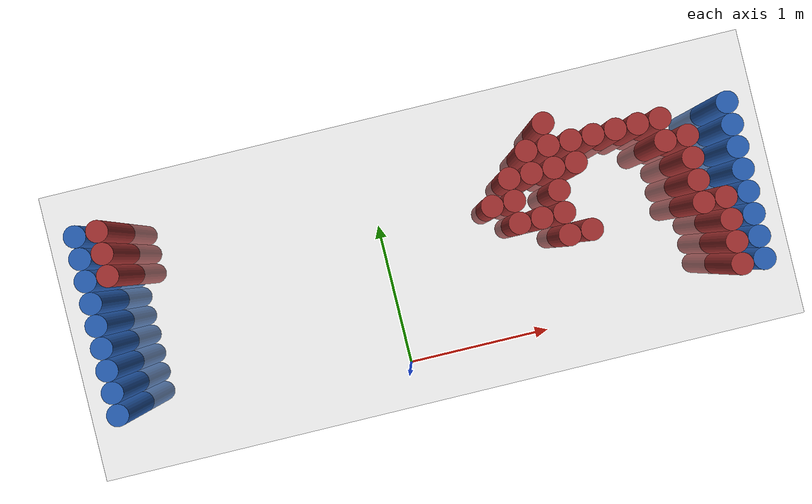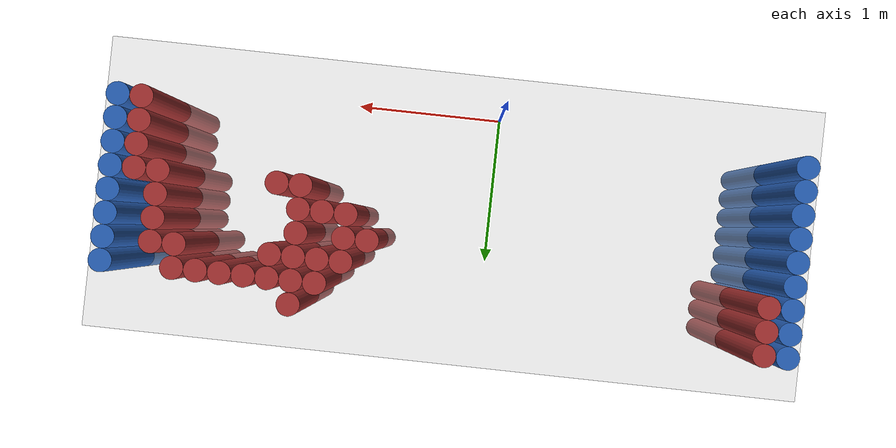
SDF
<sdf version="1.6">
 <world name="default">
  <model name="ground_plane">
   <static>1</static>
   <link name="link">
    <collision name="collision">
     <geometry><plane><normal>0 0 1</normal><size>100 100</size></plane></geometry>
     <surface><friction><ode><mu>100</mu><mu2>50</mu2></ode></friction></surface>
    </collision>
    <visual name="visual">
     <cast_shadows>0</cast_shadows>
     <geometry><plane><normal>0 0 1</normal><size>100 100</size></plane></geometry>
     <material>
      <script><uri>file://media/materials/scripts/gazebo.material</uri><name>Gazebo/Grey</name></script>
     </material>
    </visual>
   </link>
  </model>
  <model name="unit_cylinder_96">
   <static>1</static>
   <pose>-1.925000 0.175000 0.000000 0.000000 0.000000 0.000000</pose>
   <link name="link">
    <inertial>
     <mass>1</mass>
     <inertia><ixx>0.145833</ixx><ixy>0</ixy><ixz>0</ixz><iyy>0.145833</iyy><iyz>0</iyz><izz>0.125</izz></inertia>
    </inertial>
    <collision name="collision">
     <geometry><cylinder><radius>0.075000</radius><length>1.5</length></cylinder></geometry>
    </collision>
    <visual name="visual">
     <geometry><cylinder><radius>0.075000</radius><length>1.5</length></cylinder></geometry>
     <material>
      <ambient>0.152000 0.379000 0.720000 1</ambient>
      <diffuse>0.152000 0.379000 0.720000 1</diffuse>
     </material>
     <material>
      <script><name>Gazebo/Grey</name><uri>file://media/materials/scripts/gazebo.material</uri></script>
     </material>
    </visual>
   </link>
  </model>
  <model name="unit_cylinder_97">
   <static>1</static>
   <pose>-1.925000 0.325000 0.000000 0.000000 0.000000 0.000000</pose>
   <link name="link">
    <inertial>
     <mass>1</mass>
     <inertia><ixx>0.145833</ixx><ixy>0</ixy><ixz>0</ixz><iyy>0.145833</iyy><iyz>0</iyz><izz>0.125</izz></inertia>
    </inertial>
    <collision name="collision">
     <geometry><cylinder><radius>0.075000</radius><length>1.5</length></cylinder></geometry>
    </collision>
    <visual name="visual">
     <geometry><cylinder><radius>0.075000</radius><length>1.5</length></cylinder></geometry>
     <material>
      <ambient>0.152000 0.379000 0.720000 1</ambient>
      <diffuse>0.152000 0.379000 0.720000 1</diffuse>
     </material>
     <material>
      <script><name>Gazebo/Grey</name><uri>file://media/materials/scripts/gazebo.material</uri></script>
     </material>
    </visual>
   </link>
  </model>
  <model name="unit_cylinder_98">
   <static>1</static>
   <pose>-1.925000 0.475000 0.000000 0.000000 0.000000 0.000000</pose>
   <link name="link">
    <inertial>
     <mass>1</mass>
     <inertia><ixx>0.145833</ixx><ixy>0</ixy><ixz>0</ixz><iyy>0.145833</iyy><iyz>0</iyz><izz>0.125</izz></inertia>
    </inertial>
    <collision name="collision">
     <geometry><cylinder><radius>0.075000</radius><length>1.5</length></cylinder></geometry>
    </collision>
    <visual name="visual">
     <geometry><cylinder><radius>0.075000</radius><length>1.5</length></cylinder></geometry>
     <material>
      <ambient>0.152000 0.379000 0.720000 1</ambient>
      <diffuse>0.152000 0.379000 0.720000 1</diffuse>
     </material>
     <material>
      <script><name>Gazebo/Grey</name><uri>file://media/materials/scripts/gazebo.material</uri></script>
     </material>
    </visual>
   </link>
  </model>
  <model name="unit_cylinder_99">
   <static>1</static>
   <pose>-1.925000 0.625000 0.000000 0.000000 0.000000 0.000000</pose>
   <link name="link">
    <inertial>
     <mass>1</mass>
     <inertia><ixx>0.145833</ixx><ixy>0</ixy><ixz>0</ixz><iyy>0.145833</iyy><iyz>0</iyz><izz>0.125</izz></inertia>
    </inertial>
    <collision name="collision">
     <geometry><cylinder><radius>0.075000</radius><length>1.5</length></cylinder></geometry>
    </collision>
    <visual name="visual">
     <geometry><cylinder><radius>0.075000</radius><length>1.5</length></cylinder></geometry>
     <material>
      <ambient>0.152000 0.379000 0.720000 1</ambient>
      <diffuse>0.152000 0.379000 0.720000 1</diffuse>
     </material>
     <material>
      <script><name>Gazebo/Grey</name><uri>file://media/materials/scripts/gazebo.material</uri></script>
     </material>
    </visual>
   </link>
  </model>
  <model name="unit_cylinder_100">
   <static>1</static>
   <pose>-1.925000 0.775000 0.000000 0.000000 0.000000 0.000000</pose>
   <link name="link">
    <inertial>
     <mass>1</mass>
     <inertia><ixx>0.145833</ixx><ixy>0</ixy><ixz>0</ixz><iyy>0.145833</iyy><iyz>0</iyz><izz>0.125</izz></inertia>
    </inertial>
    <collision name="collision">
     <geometry><cylinder><radius>0.075000</radius><length>1.5</length></cylinder></geometry>
    </collision>
    <visual name="visual">
     <geometry><cylinder><radius>0.075000</radius><length>1.5</length></cylinder></geometry>
     <material>
      <ambient>0.152000 0.379000 0.720000 1</ambient>
      <diffuse>0.152000 0.379000 0.720000 1</diffuse>
     </material>
     <material>
      <script><name>Gazebo/Grey</name><uri>file://media/materials/scripts/gazebo.material</uri></script>
     </material>
    </visual>
   </link>
  </model>
  <model name="unit_cylinder_101">
   <static>1</static>
   <pose>-1.925000 0.925000 0.000000 0.000000 0.000000 0.000000</pose>
   <link name="link">
    <inertial>
     <mass>1</mass>
     <inertia><ixx>0.145833</ixx><ixy>0</ixy><ixz>0</ixz><iyy>0.145833</iyy><iyz>0</iyz><izz>0.125</izz></inertia>
    </inertial>
    <collision name="collision">
     <geometry><cylinder><radius>0.075000</radius><length>1.5</length></cylinder></geometry>
    </collision>
    <visual name="visual">
     <geometry><cylinder><radius>0.075000</radius><length>1.5</length></cylinder></geometry>
     <material>
      <ambient>0.152000 0.379000 0.720000 1</ambient>
      <diffuse>0.152000 0.379000 0.720000 1</diffuse>
     </material>
     <material>
      <script><name>Gazebo/Grey</name><uri>file://media/materials/scripts/gazebo.material</uri></script>
     </material>
    </visual>
   </link>
  </model>
  <model name="unit_cylinder_102">
   <static>1</static>
   <pose>-1.925000 1.075000 0.000000 0.000000 0.000000 0.000000</pose>
   <link name="link">
    <inertial>
     <mass>1</mass>
     <inertia><ixx>0.145833</ixx><ixy>0</ixy><ixz>0</ixz><iyy>0.145833</iyy><iyz>0</iyz><izz>0.125</izz></inertia>
    </inertial>
    <collision name="collision">
     <geometry><cylinder><radius>0.075000</radius><length>1.5</length></cylinder></geometry>
    </collision>
    <visual name="visual">
     <geometry><cylinder><radius>0.075000</radius><length>1.5</length></cylinder></geometry>
     <material>
      <ambient>0.152000 0.379000 0.720000 1</ambient>
      <diffuse>0.152000 0.379000 0.720000 1</diffuse>
     </material>
     <material>
      <script><name>Gazebo/Grey</name><uri>file://media/materials/scripts/gazebo.material</uri></script>
     </material>
    </visual>
   </link>
  </model>
  <model name="unit_cylinder_103">
   <static>1</static>
   <pose>-1.925000 1.225000 0.000000 0.000000 0.000000 0.000000</pose>
   <link name="link">
    <inertial>
     <mass>1</mass>
     <inertia><ixx>0.145833</ixx><ixy>0</ixy><ixz>0</ixz><iyy>0.145833</iyy><iyz>0</iyz><izz>0.125</izz></inertia>
    </inertial>
    <collision name="collision">
     <geometry><cylinder><radius>0.075000</radius><length>1.5</length></cylinder></geometry>
    </collision>
    <visual name="visual">
     <geometry><cylinder><radius>0.075000</radius><length>1.5</length></cylinder></geometry>
     <material>
      <ambient>0.152000 0.379000 0.720000 1</ambient>
      <diffuse>0.152000 0.379000 0.720000 1</diffuse>
     </material>
     <material>
      <script><name>Gazebo/Grey</name><uri>file://media/materials/scripts/gazebo.material</uri></script>
     </material>
    </visual>
   </link>
  </model>
  <model name="unit_cylinder_104">
   <static>1</static>
   <pose>-1.925000 1.375000 0.000000 0.000000 0.000000 0.000000</pose>
   <link name="link">
    <inertial>
     <mass>1</mass>
     <inertia><ixx>0.145833</ixx><ixy>0</ixy><ixz>0</ixz><iyy>0.145833</iyy><iyz>0</iyz><izz>0.125</izz></inertia>
    </inertial>
    <collision name="collision">
     <geometry><cylinder><radius>0.075000</radius><length>1.5</length></cylinder></geometry>
    </collision>
    <visual name="visual">
     <geometry><cylinder><radius>0.075000</radius><length>1.5</length></cylinder></geometry>
     <material>
      <ambient>0.152000 0.379000 0.720000 1</ambient>
      <diffuse>0.152000 0.379000 0.720000 1</diffuse>
     </material>
     <material>
      <script><name>Gazebo/Grey</name><uri>file://media/materials/scripts/gazebo.material</uri></script>
     </material>
    </visual>
   </link>
  </model>
  <model name="unit_cylinder_126">
   <static>1</static>
   <pose>-1.775000 1.075000 0.000000 0.000000 0.000000 0.000000</pose>
   <link name="link">
    <inertial>
     <mass>1</mass>
     <inertia><ixx>0.145833</ixx><ixy>0</ixy><ixz>0</ixz><iyy>0.145833</iyy><iyz>0</iyz><izz>0.125</izz></inertia>
    </inertial>
    <collision name="collision">
     <geometry><cylinder><radius>0.075000</radius><length>1.5</length></cylinder></geometry>
    </collision>
    <visual name="visual">
     <geometry><cylinder><radius>0.075000</radius><length>1.5</length></cylinder></geometry>
     <material>
      <ambient>0.648000 0.192000 0.192000 1</ambient>
      <diffuse>0.648000 0.192000 0.192000 1</diffuse>
     </material>
     <material>
      <script><name>Gazebo/Grey</name><uri>file://media/materials/scripts/gazebo.material</uri></script>
     </material>
    </visual>
   </link>
  </model>
  <model name="unit_cylinder_127">
   <static>1</static>
   <pose>-1.775000 1.225000 0.000000 0.000000 0.000000 0.000000</pose>
   <link name="link">
    <inertial>
     <mass>1</mass>
     <inertia><ixx>0.145833</ixx><ixy>0</ixy><ixz>0</ixz><iyy>0.145833</iyy><iyz>0</iyz><izz>0.125</izz></inertia>
    </inertial>
    <collision name="collision">
     <geometry><cylinder><radius>0.075000</radius><length>1.5</length></cylinder></geometry>
    </collision>
    <visual name="visual">
     <geometry><cylinder><radius>0.075000</radius><length>1.5</length></cylinder></geometry>
     <material>
      <ambient>0.648000 0.192000 0.192000 1</ambient>
      <diffuse>0.648000 0.192000 0.192000 1</diffuse>
     </material>
     <material>
      <script><name>Gazebo/Grey</name><uri>file://media/materials/scripts/gazebo.material</uri></script>
     </material>
    </visual>
   </link>
  </model>
  <model name="unit_cylinder_128">
   <static>1</static>
   <pose>-1.775000 1.375000 0.000000 0.000000 0.000000 0.000000</pose>
   <link name="link">
    <inertial>
     <mass>1</mass>
     <inertia><ixx>0.145833</ixx><ixy>0</ixy><ixz>0</ixz><iyy>0.145833</iyy><iyz>0</iyz><izz>0.125</izz></inertia>
    </inertial>
    <collision name="collision">
     <geometry><cylinder><radius>0.075000</radius><length>1.5</length></cylinder></geometry>
    </collision>
    <visual name="visual">
     <geometry><cylinder><radius>0.075000</radius><length>1.5</length></cylinder></geometry>
     <material>
      <ambient>0.648000 0.192000 0.192000 1</ambient>
      <diffuse>0.648000 0.192000 0.192000 1</diffuse>
     </material>
     <material>
      <script><name>Gazebo/Grey</name><uri>file://media/materials/scripts/gazebo.material</uri></script>
     </material>
    </visual>
   </link>
  </model>
  <model name="unit_cylinder_174">
   <static>1</static>
   <pose>0.775000 0.925000 0.000000 0.000000 0.000000 0.000000</pose>
   <link name="link">
    <inertial>
     <mass>1</mass>
     <inertia><ixx>0.145833</ixx><ixy>0</ixy><ixz>0</ixz><iyy>0.145833</iyy><iyz>0</iyz><izz>0.125</izz></inertia>
    </inertial>
    <collision name="collision">
     <geometry><cylinder><radius>0.075000</radius><length>1.5</length></cylinder></geometry>
    </collision>
    <visual name="visual">
     <geometry><cylinder><radius>0.075000</radius><length>1.5</length></cylinder></geometry>
     <material>
      <ambient>0.648000 0.192000 0.192000 1</ambient>
      <diffuse>0.648000 0.192000 0.192000 1</diffuse>
     </material>
     <material>
      <script><name>Gazebo/Grey</name><uri>file://media/materials/scripts/gazebo.material</uri></script>
     </material>
    </visual>
   </link>
  </model>
  <model name="unit_cylinder_179">
   <static>1</static>
   <pose>0.925000 0.775000 0.000000 0.000000 0.000000 0.000000</pose>
   <link name="link">
    <inertial>
     <mass>1</mass>
     <inertia><ixx>0.145833</ixx><ixy>0</ixy><ixz>0</ixz><iyy>0.145833</iyy><iyz>0</iyz><izz>0.125</izz></inertia>
    </inertial>
    <collision name="collision">
     <geometry><cylinder><radius>0.075000</radius><length>1.5</length></cylinder></geometry>
    </collision>
    <visual name="visual">
     <geometry><cylinder><radius>0.075000</radius><length>1.5</length></cylinder></geometry>
     <material>
      <ambient>0.648000 0.192000 0.192000 1</ambient>
      <diffuse>0.648000 0.192000 0.192000 1</diffuse>
     </material>
     <material>
      <script><name>Gazebo/Grey</name><uri>file://media/materials/scripts/gazebo.material</uri></script>
     </material>
    </visual>
   </link>
  </model>
  <model name="unit_cylinder_180">
   <static>1</static>
   <pose>0.925000 0.925000 0.000000 0.000000 0.000000 0.000000</pose>
   <link name="link">
    <inertial>
     <mass>1</mass>
     <inertia><ixx>0.145833</ixx><ixy>0</ixy><ixz>0</ixz><iyy>0.145833</iyy><iyz>0</iyz><izz>0.125</izz></inertia>
    </inertial>
    <collision name="collision">
     <geometry><cylinder><radius>0.075000</radius><length>1.5</length></cylinder></geometry>
    </collision>
    <visual name="visual">
     <geometry><cylinder><radius>0.075000</radius><length>1.5</length></cylinder></geometry>
     <material>
      <ambient>0.648000 0.192000 0.192000 1</ambient>
      <diffuse>0.648000 0.192000 0.192000 1</diffuse>
     </material>
     <material>
      <script><name>Gazebo/Grey</name><uri>file://media/materials/scripts/gazebo.material</uri></script>
     </material>
    </visual>
   </link>
  </model>
  <model name="unit_cylinder_181">
   <static>1</static>
   <pose>0.925000 1.075000 0.000000 0.000000 0.000000 0.000000</pose>
   <link name="link">
    <inertial>
     <mass>1</mass>
     <inertia><ixx>0.145833</ixx><ixy>0</ixy><ixz>0</ixz><iyy>0.145833</iyy><iyz>0</iyz><izz>0.125</izz></inertia>
    </inertial>
    <collision name="collision">
     <geometry><cylinder><radius>0.075000</radius><length>1.5</length></cylinder></geometry>
    </collision>
    <visual name="visual">
     <geometry><cylinder><radius>0.075000</radius><length>1.5</length></cylinder></geometry>
     <material>
      <ambient>0.648000 0.192000 0.192000 1</ambient>
      <diffuse>0.648000 0.192000 0.192000 1</diffuse>
     </material>
     <material>
      <script><name>Gazebo/Grey</name><uri>file://media/materials/scripts/gazebo.material</uri></script>
     </material>
    </visual>
   </link>
  </model>
  <model name="unit_cylinder_186">
   <static>1</static>
   <pose>1.075000 0.775000 0.000000 0.000000 0.000000 0.000000</pose>
   <link name="link">
    <inertial>
     <mass>1</mass>
     <inertia><ixx>0.145833</ixx><ixy>0</ixy><ixz>0</ixz><iyy>0.145833</iyy><iyz>0</iyz><izz>0.125</izz></inertia>
    </inertial>
    <collision name="collision">
     <geometry><cylinder><radius>0.075000</radius><length>1.5</length></cylinder></geometry>
    </collision>
    <visual name="visual">
     <geometry><cylinder><radius>0.075000</radius><length>1.5</length></cylinder></geometry>
     <material>
      <ambient>0.648000 0.192000 0.192000 1</ambient>
      <diffuse>0.648000 0.192000 0.192000 1</diffuse>
     </material>
     <material>
      <script><name>Gazebo/Grey</name><uri>file://media/materials/scripts/gazebo.material</uri></script>
     </material>
    </visual>
   </link>
  </model>
  <model name="unit_cylinder_187">
   <static>1</static>
   <pose>1.075000 1.075000 0.000000 0.000000 0.000000 0.000000</pose>
   <link name="link">
    <inertial>
     <mass>1</mass>
     <inertia><ixx>0.145833</ixx><ixy>0</ixy><ixz>0</ixz><iyy>0.145833</iyy><iyz>0</iyz><izz>0.125</izz></inertia>
    </inertial>
    <collision name="collision">
     <geometry><cylinder><radius>0.075000</radius><length>1.5</length></cylinder></geometry>
    </collision>
    <visual name="visual">
     <geometry><cylinder><radius>0.075000</radius><length>1.5</length></cylinder></geometry>
     <material>
      <ambient>0.648000 0.192000 0.192000 1</ambient>
      <diffuse>0.648000 0.192000 0.192000 1</diffuse>
     </material>
     <material>
      <script><name>Gazebo/Grey</name><uri>file://media/materials/scripts/gazebo.material</uri></script>
     </material>
    </visual>
   </link>
  </model>
  <model name="unit_cylinder_188">
   <static>1</static>
   <pose>1.075000 1.225000 0.000000 0.000000 0.000000 0.000000</pose>
   <link name="link">
    <inertial>
     <mass>1</mass>
     <inertia><ixx>0.145833</ixx><ixy>0</ixy><ixz>0</ixz><iyy>0.145833</iyy><iyz>0</iyz><izz>0.125</izz></inertia>
    </inertial>
    <collision name="collision">
     <geometry><cylinder><radius>0.075000</radius><length>1.5</length></cylinder></geometry>
    </collision>
    <visual name="visual">
     <geometry><cylinder><radius>0.075000</radius><length>1.5</length></cylinder></geometry>
     <material>
      <ambient>0.648000 0.192000 0.192000 1</ambient>
      <diffuse>0.648000 0.192000 0.192000 1</diffuse>
     </material>
     <material>
      <script><name>Gazebo/Grey</name><uri>file://media/materials/scripts/gazebo.material</uri></script>
     </material>
    </visual>
   </link>
  </model>
  <model name="unit_cylinder_190">
   <static>1</static>
   <pose>1.225000 0.625000 0.000000 0.000000 0.000000 0.000000</pose>
   <link name="link">
    <inertial>
     <mass>1</mass>
     <inertia><ixx>0.145833</ixx><ixy>0</ixy><ixz>0</ixz><iyy>0.145833</iyy><iyz>0</iyz><izz>0.125</izz></inertia>
    </inertial>
    <collision name="collision">
     <geometry><cylinder><radius>0.075000</radius><length>1.5</length></cylinder></geometry>
    </collision>
    <visual name="visual">
     <geometry><cylinder><radius>0.075000</radius><length>1.5</length></cylinder></geometry>
     <material>
      <ambient>0.648000 0.192000 0.192000 1</ambient>
      <diffuse>0.648000 0.192000 0.192000 1</diffuse>
     </material>
     <material>
      <script><name>Gazebo/Grey</name><uri>file://media/materials/scripts/gazebo.material</uri></script>
     </material>
    </visual>
   </link>
  </model>
  <model name="unit_cylinder_191">
   <static>1</static>
   <pose>1.225000 0.775000 0.000000 0.000000 0.000000 0.000000</pose>
   <link name="link">
    <inertial>
     <mass>1</mass>
     <inertia><ixx>0.145833</ixx><ixy>0</ixy><ixz>0</ixz><iyy>0.145833</iyy><iyz>0</iyz><izz>0.125</izz></inertia>
    </inertial>
    <collision name="collision">
     <geometry><cylinder><radius>0.075000</radius><length>1.5</length></cylinder></geometry>
    </collision>
    <visual name="visual">
     <geometry><cylinder><radius>0.075000</radius><length>1.5</length></cylinder></geometry>
     <material>
      <ambient>0.648000 0.192000 0.192000 1</ambient>
      <diffuse>0.648000 0.192000 0.192000 1</diffuse>
     </material>
     <material>
      <script><name>Gazebo/Grey</name><uri>file://media/materials/scripts/gazebo.material</uri></script>
     </material>
    </visual>
   </link>
  </model>
  <model name="unit_cylinder_192">
   <static>1</static>
   <pose>1.225000 0.925000 0.000000 0.000000 0.000000 0.000000</pose>
   <link name="link">
    <inertial>
     <mass>1</mass>
     <inertia><ixx>0.145833</ixx><ixy>0</ixy><ixz>0</ixz><iyy>0.145833</iyy><iyz>0</iyz><izz>0.125</izz></inertia>
    </inertial>
    <collision name="collision">
     <geometry><cylinder><radius>0.075000</radius><length>1.5</length></cylinder></geometry>
    </collision>
    <visual name="visual">
     <geometry><cylinder><radius>0.075000</radius><length>1.5</length></cylinder></geometry>
     <material>
      <ambient>0.648000 0.192000 0.192000 1</ambient>
      <diffuse>0.648000 0.192000 0.192000 1</diffuse>
     </material>
     <material>
      <script><name>Gazebo/Grey</name><uri>file://media/materials/scripts/gazebo.material</uri></script>
     </material>
    </visual>
   </link>
  </model>
  <model name="unit_cylinder_193">
   <static>1</static>
   <pose>1.225000 1.075000 0.000000 0.000000 0.000000 0.000000</pose>
   <link name="link">
    <inertial>
     <mass>1</mass>
     <inertia><ixx>0.145833</ixx><ixy>0</ixy><ixz>0</ixz><iyy>0.145833</iyy><iyz>0</iyz><izz>0.125</izz></inertia>
    </inertial>
    <collision name="collision">
     <geometry><cylinder><radius>0.075000</radius><length>1.5</length></cylinder></geometry>
    </collision>
    <visual name="visual">
     <geometry><cylinder><radius>0.075000</radius><length>1.5</length></cylinder></geometry>
     <material>
      <ambient>0.648000 0.192000 0.192000 1</ambient>
      <diffuse>0.648000 0.192000 0.192000 1</diffuse>
     </material>
     <material>
      <script><name>Gazebo/Grey</name><uri>file://media/materials/scripts/gazebo.material</uri></script>
     </material>
    </visual>
   </link>
  </model>
  <model name="unit_cylinder_194">
   <static>1</static>
   <pose>1.225000 1.225000 0.000000 0.000000 0.000000 0.000000</pose>
   <link name="link">
    <inertial>
     <mass>1</mass>
     <inertia><ixx>0.145833</ixx><ixy>0</ixy><ixz>0</ixz><iyy>0.145833</iyy><iyz>0</iyz><izz>0.125</izz></inertia>
    </inertial>
    <collision name="collision">
     <geometry><cylinder><radius>0.075000</radius><length>1.5</length></cylinder></geometry>
    </collision>
    <visual name="visual">
     <geometry><cylinder><radius>0.075000</radius><length>1.5</length></cylinder></geometry>
     <material>
      <ambient>0.648000 0.192000 0.192000 1</ambient>
      <diffuse>0.648000 0.192000 0.192000 1</diffuse>
     </material>
     <material>
      <script><name>Gazebo/Grey</name><uri>file://media/materials/scripts/gazebo.material</uri></script>
     </material>
    </visual>
   </link>
  </model>
  <model name="unit_cylinder_195">
   <static>1</static>
   <pose>1.225000 1.375000 0.000000 0.000000 0.000000 0.000000</pose>
   <link name="link">
    <inertial>
     <mass>1</mass>
     <inertia><ixx>0.145833</ixx><ixy>0</ixy><ixz>0</ixz><iyy>0.145833</iyy><iyz>0</iyz><izz>0.125</izz></inertia>
    </inertial>
    <collision name="collision">
     <geometry><cylinder><radius>0.075000</radius><length>1.5</length></cylinder></geometry>
    </collision>
    <visual name="visual">
     <geometry><cylinder><radius>0.075000</radius><length>1.5</length></cylinder></geometry>
     <material>
      <ambient>0.648000 0.192000 0.192000 1</ambient>
      <diffuse>0.648000 0.192000 0.192000 1</diffuse>
     </material>
     <material>
      <script><name>Gazebo/Grey</name><uri>file://media/materials/scripts/gazebo.material</uri></script>
     </material>
    </visual>
   </link>
  </model>
  <model name="unit_cylinder_197">
   <static>1</static>
   <pose>1.375000 0.625000 0.000000 0.000000 0.000000 0.000000</pose>
   <link name="link">
    <inertial>
     <mass>1</mass>
     <inertia><ixx>0.145833</ixx><ixy>0</ixy><ixz>0</ixz><iyy>0.145833</iyy><iyz>0</iyz><izz>0.125</izz></inertia>
    </inertial>
    <collision name="collision">
     <geometry><cylinder><radius>0.075000</radius><length>1.5</length></cylinder></geometry>
    </collision>
    <visual name="visual">
     <geometry><cylinder><radius>0.075000</radius><length>1.5</length></cylinder></geometry>
     <material>
      <ambient>0.648000 0.192000 0.192000 1</ambient>
      <diffuse>0.648000 0.192000 0.192000 1</diffuse>
     </material>
     <material>
      <script><name>Gazebo/Grey</name><uri>file://media/materials/scripts/gazebo.material</uri></script>
     </material>
    </visual>
   </link>
  </model>
  <model name="unit_cylinder_198">
   <static>1</static>
   <pose>1.375000 1.075000 0.000000 0.000000 0.000000 0.000000</pose>
   <link name="link">
    <inertial>
     <mass>1</mass>
     <inertia><ixx>0.145833</ixx><ixy>0</ixy><ixz>0</ixz><iyy>0.145833</iyy><iyz>0</iyz><izz>0.125</izz></inertia>
    </inertial>
    <collision name="collision">
     <geometry><cylinder><radius>0.075000</radius><length>1.5</length></cylinder></geometry>
    </collision>
    <visual name="visual">
     <geometry><cylinder><radius>0.075000</radius><length>1.5</length></cylinder></geometry>
     <material>
      <ambient>0.648000 0.192000 0.192000 1</ambient>
      <diffuse>0.648000 0.192000 0.192000 1</diffuse>
     </material>
     <material>
      <script><name>Gazebo/Grey</name><uri>file://media/materials/scripts/gazebo.material</uri></script>
     </material>
    </visual>
   </link>
  </model>
  <model name="unit_cylinder_199">
   <static>1</static>
   <pose>1.375000 1.225000 0.000000 0.000000 0.000000 0.000000</pose>
   <link name="link">
    <inertial>
     <mass>1</mass>
     <inertia><ixx>0.145833</ixx><ixy>0</ixy><ixz>0</ixz><iyy>0.145833</iyy><iyz>0</iyz><izz>0.125</izz></inertia>
    </inertial>
    <collision name="collision">
     <geometry><cylinder><radius>0.075000</radius><length>1.5</length></cylinder></geometry>
    </collision>
    <visual name="visual">
     <geometry><cylinder><radius>0.075000</radius><length>1.5</length></cylinder></geometry>
     <material>
      <ambient>0.648000 0.192000 0.192000 1</ambient>
      <diffuse>0.648000 0.192000 0.192000 1</diffuse>
     </material>
     <material>
      <script><name>Gazebo/Grey</name><uri>file://media/materials/scripts/gazebo.material</uri></script>
     </material>
    </visual>
   </link>
  </model>
  <model name="unit_cylinder_204">
   <static>1</static>
   <pose>1.525000 1.225000 0.000000 0.000000 0.000000 0.000000</pose>
   <link name="link">
    <inertial>
     <mass>1</mass>
     <inertia><ixx>0.145833</ixx><ixy>0</ixy><ixz>0</ixz><iyy>0.145833</iyy><iyz>0</iyz><izz>0.125</izz></inertia>
    </inertial>
    <collision name="collision">
     <geometry><cylinder><radius>0.075000</radius><length>1.5</length></cylinder></geometry>
    </collision>
    <visual name="visual">
     <geometry><cylinder><radius>0.075000</radius><length>1.5</length></cylinder></geometry>
     <material>
      <ambient>0.648000 0.192000 0.192000 1</ambient>
      <diffuse>0.648000 0.192000 0.192000 1</diffuse>
     </material>
     <material>
      <script><name>Gazebo/Grey</name><uri>file://media/materials/scripts/gazebo.material</uri></script>
     </material>
    </visual>
   </link>
  </model>
  <model name="unit_cylinder_209">
   <static>1</static>
   <pose>1.675000 1.225000 0.000000 0.000000 0.000000 0.000000</pose>
   <link name="link">
    <inertial>
     <mass>1</mass>
     <inertia><ixx>0.145833</ixx><ixy>0</ixy><ixz>0</ixz><iyy>0.145833</iyy><iyz>0</iyz><izz>0.125</izz></inertia>
    </inertial>
    <collision name="collision">
     <geometry><cylinder><radius>0.075000</radius><length>1.5</length></cylinder></geometry>
    </collision>
    <visual name="visual">
     <geometry><cylinder><radius>0.075000</radius><length>1.5</length></cylinder></geometry>
     <material>
      <ambient>0.648000 0.192000 0.192000 1</ambient>
      <diffuse>0.648000 0.192000 0.192000 1</diffuse>
     </material>
     <material>
      <script><name>Gazebo/Grey</name><uri>file://media/materials/scripts/gazebo.material</uri></script>
     </material>
    </visual>
   </link>
  </model>
  <model name="unit_cylinder_216">
   <static>1</static>
   <pose>1.825000 1.225000 0.000000 0.000000 0.000000 0.000000</pose>
   <link name="link">
    <inertial>
     <mass>1</mass>
     <inertia><ixx>0.145833</ixx><ixy>0</ixy><ixz>0</ixz><iyy>0.145833</iyy><iyz>0</iyz><izz>0.125</izz></inertia>
    </inertial>
    <collision name="collision">
     <geometry><cylinder><radius>0.075000</radius><length>1.5</length></cylinder></geometry>
    </collision>
    <visual name="visual">
     <geometry><cylinder><radius>0.075000</radius><length>1.5</length></cylinder></geometry>
     <material>
      <ambient>0.648000 0.192000 0.192000 1</ambient>
      <diffuse>0.648000 0.192000 0.192000 1</diffuse>
     </material>
     <material>
      <script><name>Gazebo/Grey</name><uri>file://media/materials/scripts/gazebo.material</uri></script>
     </material>
    </visual>
   </link>
  </model>
  <model name="unit_cylinder_221">
   <static>1</static>
   <pose>1.975000 1.075000 0.000000 0.000000 0.000000 0.000000</pose>
   <link name="link">
    <inertial>
     <mass>1</mass>
     <inertia><ixx>0.145833</ixx><ixy>0</ixy><ixz>0</ixz><iyy>0.145833</iyy><iyz>0</iyz><izz>0.125</izz></inertia>
    </inertial>
    <collision name="collision">
     <geometry><cylinder><radius>0.075000</radius><length>1.5</length></cylinder></geometry>
    </collision>
    <visual name="visual">
     <geometry><cylinder><radius>0.075000</radius><length>1.5</length></cylinder></geometry>
     <material>
      <ambient>0.648000 0.192000 0.192000 1</ambient>
      <diffuse>0.648000 0.192000 0.192000 1</diffuse>
     </material>
     <material>
      <script><name>Gazebo/Grey</name><uri>file://media/materials/scripts/gazebo.material</uri></script>
     </material>
    </visual>
   </link>
  </model>
  <model name="unit_cylinder_222">
   <static>1</static>
   <pose>1.975000 1.225000 0.000000 0.000000 0.000000 0.000000</pose>
   <link name="link">
    <inertial>
     <mass>1</mass>
     <inertia><ixx>0.145833</ixx><ixy>0</ixy><ixz>0</ixz><iyy>0.145833</iyy><iyz>0</iyz><izz>0.125</izz></inertia>
    </inertial>
    <collision name="collision">
     <geometry><cylinder><radius>0.075000</radius><length>1.5</length></cylinder></geometry>
    </collision>
    <visual name="visual">
     <geometry><cylinder><radius>0.075000</radius><length>1.5</length></cylinder></geometry>
     <material>
      <ambient>0.648000 0.192000 0.192000 1</ambient>
      <diffuse>0.648000 0.192000 0.192000 1</diffuse>
     </material>
     <material>
      <script><name>Gazebo/Grey</name><uri>file://media/materials/scripts/gazebo.material</uri></script>
     </material>
    </visual>
   </link>
  </model>
  <model name="unit_cylinder_227">
   <static>1</static>
   <pose>2.125000 0.625000 0.000000 0.000000 0.000000 0.000000</pose>
   <link name="link">
    <inertial>
     <mass>1</mass>
     <inertia><ixx>0.145833</ixx><ixy>0</ixy><ixz>0</ixz><iyy>0.145833</iyy><iyz>0</iyz><izz>0.125</izz></inertia>
    </inertial>
    <collision name="collision">
     <geometry><cylinder><radius>0.075000</radius><length>1.5</length></cylinder></geometry>
    </collision>
    <visual name="visual">
     <geometry><cylinder><radius>0.075000</radius><length>1.5</length></cylinder></geometry>
     <material>
      <ambient>0.648000 0.192000 0.192000 1</ambient>
      <diffuse>0.648000 0.192000 0.192000 1</diffuse>
     </material>
     <material>
      <script><name>Gazebo/Grey</name><uri>file://media/materials/scripts/gazebo.material</uri></script>
     </material>
    </visual>
   </link>
  </model>
  <model name="unit_cylinder_228">
   <static>1</static>
   <pose>2.125000 0.775000 0.000000 0.000000 0.000000 0.000000</pose>
   <link name="link">
    <inertial>
     <mass>1</mass>
     <inertia><ixx>0.145833</ixx><ixy>0</ixy><ixz>0</ixz><iyy>0.145833</iyy><iyz>0</iyz><izz>0.125</izz></inertia>
    </inertial>
    <collision name="collision">
     <geometry><cylinder><radius>0.075000</radius><length>1.5</length></cylinder></geometry>
    </collision>
    <visual name="visual">
     <geometry><cylinder><radius>0.075000</radius><length>1.5</length></cylinder></geometry>
     <material>
      <ambient>0.648000 0.192000 0.192000 1</ambient>
      <diffuse>0.648000 0.192000 0.192000 1</diffuse>
     </material>
     <material>
      <script><name>Gazebo/Grey</name><uri>file://media/materials/scripts/gazebo.material</uri></script>
     </material>
    </visual>
   </link>
  </model>
  <model name="unit_cylinder_229">
   <static>1</static>
   <pose>2.125000 0.925000 0.000000 0.000000 0.000000 0.000000</pose>
   <link name="link">
    <inertial>
     <mass>1</mass>
     <inertia><ixx>0.145833</ixx><ixy>0</ixy><ixz>0</ixz><iyy>0.145833</iyy><iyz>0</iyz><izz>0.125</izz></inertia>
    </inertial>
    <collision name="collision">
     <geometry><cylinder><radius>0.075000</radius><length>1.5</length></cylinder></geometry>
    </collision>
    <visual name="visual">
     <geometry><cylinder><radius>0.075000</radius><length>1.5</length></cylinder></geometry>
     <material>
      <ambient>0.648000 0.192000 0.192000 1</ambient>
      <diffuse>0.648000 0.192000 0.192000 1</diffuse>
     </material>
     <material>
      <script><name>Gazebo/Grey</name><uri>file://media/materials/scripts/gazebo.material</uri></script>
     </material>
    </visual>
   </link>
  </model>
  <model name="unit_cylinder_230">
   <static>1</static>
   <pose>2.125000 1.075000 0.000000 0.000000 0.000000 0.000000</pose>
   <link name="link">
    <inertial>
     <mass>1</mass>
     <inertia><ixx>0.145833</ixx><ixy>0</ixy><ixz>0</ixz><iyy>0.145833</iyy><iyz>0</iyz><izz>0.125</izz></inertia>
    </inertial>
    <collision name="collision">
     <geometry><cylinder><radius>0.075000</radius><length>1.5</length></cylinder></geometry>
    </collision>
    <visual name="visual">
     <geometry><cylinder><radius>0.075000</radius><length>1.5</length></cylinder></geometry>
     <material>
      <ambient>0.648000 0.192000 0.192000 1</ambient>
      <diffuse>0.648000 0.192000 0.192000 1</diffuse>
     </material>
     <material>
      <script><name>Gazebo/Grey</name><uri>file://media/materials/scripts/gazebo.material</uri></script>
     </material>
    </visual>
   </link>
  </model>
  <model name="unit_cylinder_239">
   <static>1</static>
   <pose>2.275000 0.175000 0.000000 0.000000 0.000000 0.000000</pose>
   <link name="link">
    <inertial>
     <mass>1</mass>
     <inertia><ixx>0.145833</ixx><ixy>0</ixy><ixz>0</ixz><iyy>0.145833</iyy><iyz>0</iyz><izz>0.125</izz></inertia>
    </inertial>
    <collision name="collision">
     <geometry><cylinder><radius>0.075000</radius><length>1.5</length></cylinder></geometry>
    </collision>
    <visual name="visual">
     <geometry><cylinder><radius>0.075000</radius><length>1.5</length></cylinder></geometry>
     <material>
      <ambient>0.648000 0.192000 0.192000 1</ambient>
      <diffuse>0.648000 0.192000 0.192000 1</diffuse>
     </material>
     <material>
      <script><name>Gazebo/Grey</name><uri>file://media/materials/scripts/gazebo.material</uri></script>
     </material>
    </visual>
   </link>
  </model>
  <model name="unit_cylinder_240">
   <static>1</static>
   <pose>2.275000 0.325000 0.000000 0.000000 0.000000 0.000000</pose>
   <link name="link">
    <inertial>
     <mass>1</mass>
     <inertia><ixx>0.145833</ixx><ixy>0</ixy><ixz>0</ixz><iyy>0.145833</iyy><iyz>0</iyz><izz>0.125</izz></inertia>
    </inertial>
    <collision name="collision">
     <geometry><cylinder><radius>0.075000</radius><length>1.5</length></cylinder></geometry>
    </collision>
    <visual name="visual">
     <geometry><cylinder><radius>0.075000</radius><length>1.5</length></cylinder></geometry>
     <material>
      <ambient>0.648000 0.192000 0.192000 1</ambient>
      <diffuse>0.648000 0.192000 0.192000 1</diffuse>
     </material>
     <material>
      <script><name>Gazebo/Grey</name><uri>file://media/materials/scripts/gazebo.material</uri></script>
     </material>
    </visual>
   </link>
  </model>
  <model name="unit_cylinder_241">
   <static>1</static>
   <pose>2.275000 0.475000 0.000000 0.000000 0.000000 0.000000</pose>
   <link name="link">
    <inertial>
     <mass>1</mass>
     <inertia><ixx>0.145833</ixx><ixy>0</ixy><ixz>0</ixz><iyy>0.145833</iyy><iyz>0</iyz><izz>0.125</izz></inertia>
    </inertial>
    <collision name="collision">
     <geometry><cylinder><radius>0.075000</radius><length>1.5</length></cylinder></geometry>
    </collision>
    <visual name="visual">
     <geometry><cylinder><radius>0.075000</radius><length>1.5</length></cylinder></geometry>
     <material>
      <ambient>0.648000 0.192000 0.192000 1</ambient>
      <diffuse>0.648000 0.192000 0.192000 1</diffuse>
     </material>
     <material>
      <script><name>Gazebo/Grey</name><uri>file://media/materials/scripts/gazebo.material</uri></script>
     </material>
    </visual>
   </link>
  </model>
  <model name="unit_cylinder_242">
   <static>1</static>
   <pose>2.275000 0.625000 0.000000 0.000000 0.000000 0.000000</pose>
   <link name="link">
    <inertial>
     <mass>1</mass>
     <inertia><ixx>0.145833</ixx><ixy>0</ixy><ixz>0</ixz><iyy>0.145833</iyy><iyz>0</iyz><izz>0.125</izz></inertia>
    </inertial>
    <collision name="collision">
     <geometry><cylinder><radius>0.075000</radius><length>1.5</length></cylinder></geometry>
    </collision>
    <visual name="visual">
     <geometry><cylinder><radius>0.075000</radius><length>1.5</length></cylinder></geometry>
     <material>
      <ambient>0.648000 0.192000 0.192000 1</ambient>
      <diffuse>0.648000 0.192000 0.192000 1</diffuse>
     </material>
     <material>
      <script><name>Gazebo/Grey</name><uri>file://media/materials/scripts/gazebo.material</uri></script>
     </material>
    </visual>
   </link>
  </model>
  <model name="unit_cylinder_260">
   <static>1</static>
   <pose>2.425000 0.175000 0.000000 0.000000 0.000000 0.000000</pose>
   <link name="link">
    <inertial>
     <mass>1</mass>
     <inertia><ixx>0.145833</ixx><ixy>0</ixy><ixz>0</ixz><iyy>0.145833</iyy><iyz>0</iyz><izz>0.125</izz></inertia>
    </inertial>
    <collision name="collision">
     <geometry><cylinder><radius>0.075000</radius><length>1.5</length></cylinder></geometry>
    </collision>
    <visual name="visual">
     <geometry><cylinder><radius>0.075000</radius><length>1.5</length></cylinder></geometry>
     <material>
      <ambient>0.152000 0.379000 0.720000 1</ambient>
      <diffuse>0.152000 0.379000 0.720000 1</diffuse>
     </material>
     <material>
      <script><name>Gazebo/Grey</name><uri>file://media/materials/scripts/gazebo.material</uri></script>
     </material>
    </visual>
   </link>
  </model>
  <model name="unit_cylinder_261">
   <static>1</static>
   <pose>2.425000 0.325000 0.000000 0.000000 0.000000 0.000000</pose>
   <link name="link">
    <inertial>
     <mass>1</mass>
     <inertia><ixx>0.145833</ixx><ixy>0</ixy><ixz>0</ixz><iyy>0.145833</iyy><iyz>0</iyz><izz>0.125</izz></inertia>
    </inertial>
    <collision name="collision">
     <geometry><cylinder><radius>0.075000</radius><length>1.5</length></cylinder></geometry>
    </collision>
    <visual name="visual">
     <geometry><cylinder><radius>0.075000</radius><length>1.5</length></cylinder></geometry>
     <material>
      <ambient>0.152000 0.379000 0.720000 1</ambient>
      <diffuse>0.152000 0.379000 0.720000 1</diffuse>
     </material>
     <material>
      <script><name>Gazebo/Grey</name><uri>file://media/materials/scripts/gazebo.material</uri></script>
     </material>
    </visual>
   </link>
  </model>
  <model name="unit_cylinder_262">
   <static>1</static>
   <pose>2.425000 0.475000 0.000000 0.000000 0.000000 0.000000</pose>
   <link name="link">
    <inertial>
     <mass>1</mass>
     <inertia><ixx>0.145833</ixx><ixy>0</ixy><ixz>0</ixz><iyy>0.145833</iyy><iyz>0</iyz><izz>0.125</izz></inertia>
    </inertial>
    <collision name="collision">
     <geometry><cylinder><radius>0.075000</radius><length>1.5</length></cylinder></geometry>
    </collision>
    <visual name="visual">
     <geometry><cylinder><radius>0.075000</radius><length>1.5</length></cylinder></geometry>
     <material>
      <ambient>0.152000 0.379000 0.720000 1</ambient>
      <diffuse>0.152000 0.379000 0.720000 1</diffuse>
     </material>
     <material>
      <script><name>Gazebo/Grey</name><uri>file://media/materials/scripts/gazebo.material</uri></script>
     </material>
    </visual>
   </link>
  </model>
  <model name="unit_cylinder_263">
   <static>1</static>
   <pose>2.425000 0.625000 0.000000 0.000000 0.000000 0.000000</pose>
   <link name="link">
    <inertial>
     <mass>1</mass>
     <inertia><ixx>0.145833</ixx><ixy>0</ixy><ixz>0</ixz><iyy>0.145833</iyy><iyz>0</iyz><izz>0.125</izz></inertia>
    </inertial>
    <collision name="collision">
     <geometry><cylinder><radius>0.075000</radius><length>1.5</length></cylinder></geometry>
    </collision>
    <visual name="visual">
     <geometry><cylinder><radius>0.075000</radius><length>1.5</length></cylinder></geometry>
     <material>
      <ambient>0.152000 0.379000 0.720000 1</ambient>
      <diffuse>0.152000 0.379000 0.720000 1</diffuse>
     </material>
     <material>
      <script><name>Gazebo/Grey</name><uri>file://media/materials/scripts/gazebo.material</uri></script>
     </material>
    </visual>
   </link>
  </model>
  <model name="unit_cylinder_264">
   <static>1</static>
   <pose>2.425000 0.775000 0.000000 0.000000 0.000000 0.000000</pose>
   <link name="link">
    <inertial>
     <mass>1</mass>
     <inertia><ixx>0.145833</ixx><ixy>0</ixy><ixz>0</ixz><iyy>0.145833</iyy><iyz>0</iyz><izz>0.125</izz></inertia>
    </inertial>
    <collision name="collision">
     <geometry><cylinder><radius>0.075000</radius><length>1.5</length></cylinder></geometry>
    </collision>
    <visual name="visual">
     <geometry><cylinder><radius>0.075000</radius><length>1.5</length></cylinder></geometry>
     <material>
      <ambient>0.152000 0.379000 0.720000 1</ambient>
      <diffuse>0.152000 0.379000 0.720000 1</diffuse>
     </material>
     <material>
      <script><name>Gazebo/Grey</name><uri>file://media/materials/scripts/gazebo.material</uri></script>
     </material>
    </visual>
   </link>
  </model>
  <model name="unit_cylinder_265">
   <static>1</static>
   <pose>2.425000 0.925000 0.000000 0.000000 0.000000 0.000000</pose>
   <link name="link">
    <inertial>
     <mass>1</mass>
     <inertia><ixx>0.145833</ixx><ixy>0</ixy><ixz>0</ixz><iyy>0.145833</iyy><iyz>0</iyz><izz>0.125</izz></inertia>
    </inertial>
    <collision name="collision">
     <geometry><cylinder><radius>0.075000</radius><length>1.5</length></cylinder></geometry>
    </collision>
    <visual name="visual">
     <geometry><cylinder><radius>0.075000</radius><length>1.5</length></cylinder></geometry>
     <material>
      <ambient>0.152000 0.379000 0.720000 1</ambient>
      <diffuse>0.152000 0.379000 0.720000 1</diffuse>
     </material>
     <material>
      <script><name>Gazebo/Grey</name><uri>file://media/materials/scripts/gazebo.material</uri></script>
     </material>
    </visual>
   </link>
  </model>
  <model name="unit_cylinder_266">
   <static>1</static>
   <pose>2.425000 1.075000 0.000000 0.000000 0.000000 0.000000</pose>
   <link name="link">
    <inertial>
     <mass>1</mass>
     <inertia><ixx>0.145833</ixx><ixy>0</ixy><ixz>0</ixz><iyy>0.145833</iyy><iyz>0</iyz><izz>0.125</izz></inertia>
    </inertial>
    <collision name="collision">
     <geometry><cylinder><radius>0.075000</radius><length>1.5</length></cylinder></geometry>
    </collision>
    <visual name="visual">
     <geometry><cylinder><radius>0.075000</radius><length>1.5</length></cylinder></geometry>
     <material>
      <ambient>0.152000 0.379000 0.720000 1</ambient>
      <diffuse>0.152000 0.379000 0.720000 1</diffuse>
     </material>
     <material>
      <script><name>Gazebo/Grey</name><uri>file://media/materials/scripts/gazebo.material</uri></script>
     </material>
    </visual>
   </link>
  </model>
  <model name="unit_cylinder_267">
   <static>1</static>
   <pose>2.425000 1.225000 0.000000 0.000000 0.000000 0.000000</pose>
   <link name="link">
    <inertial>
     <mass>1</mass>
     <inertia><ixx>0.145833</ixx><ixy>0</ixy><ixz>0</ixz><iyy>0.145833</iyy><iyz>0</iyz><izz>0.125</izz></inertia>
    </inertial>
    <collision name="collision">
     <geometry><cylinder><radius>0.075000</radius><length>1.5</length></cylinder></geometry>
    </collision>
    <visual name="visual">
     <geometry><cylinder><radius>0.075000</radius><length>1.5</length></cylinder></geometry>
     <material>
      <ambient>0.152000 0.379000 0.720000 1</ambient>
      <diffuse>0.152000 0.379000 0.720000 1</diffuse>
     </material>
     <material>
      <script><name>Gazebo/Grey</name><uri>file://media/materials/scripts/gazebo.material</uri></script>
     </material>
    </visual>
   </link>
  </model>
 </world>
</sdf>
